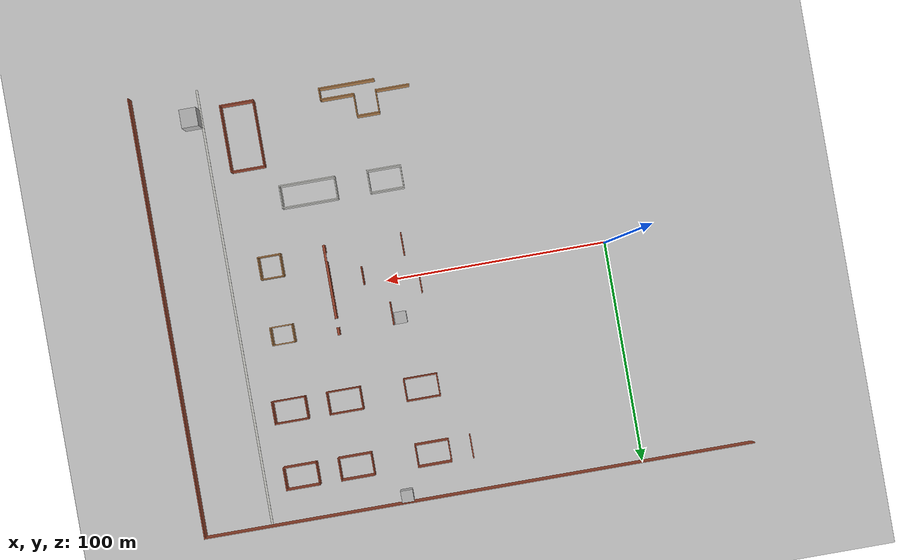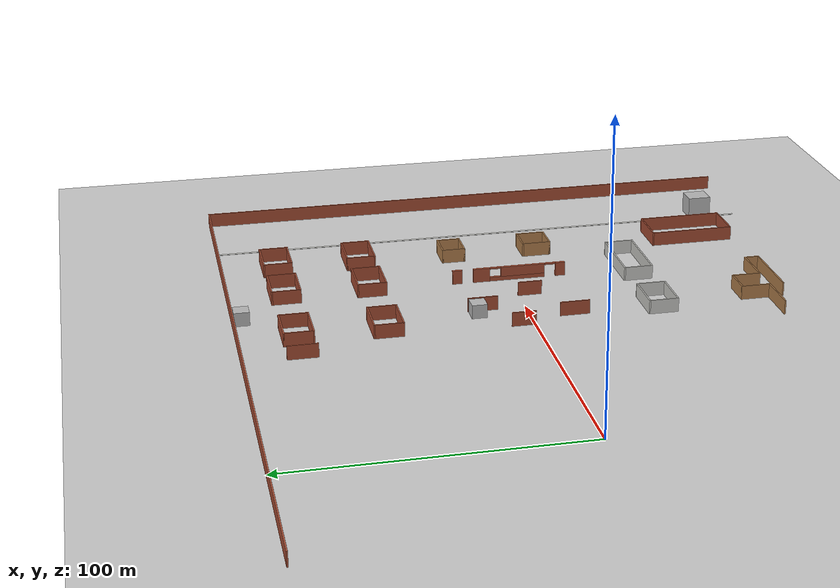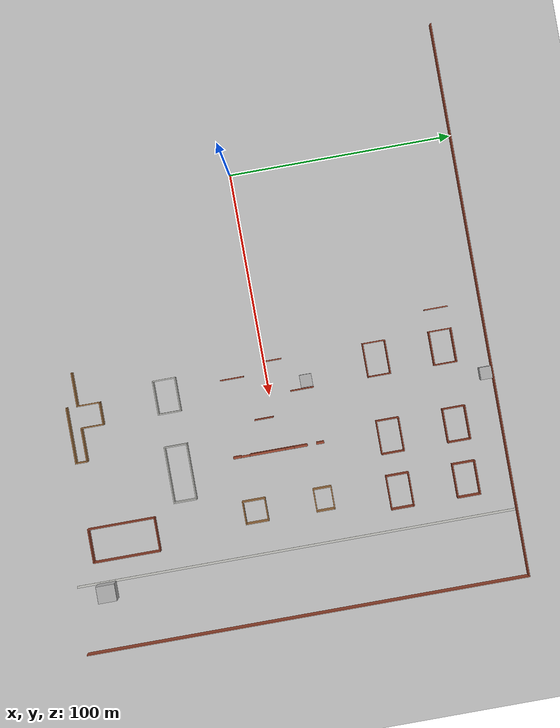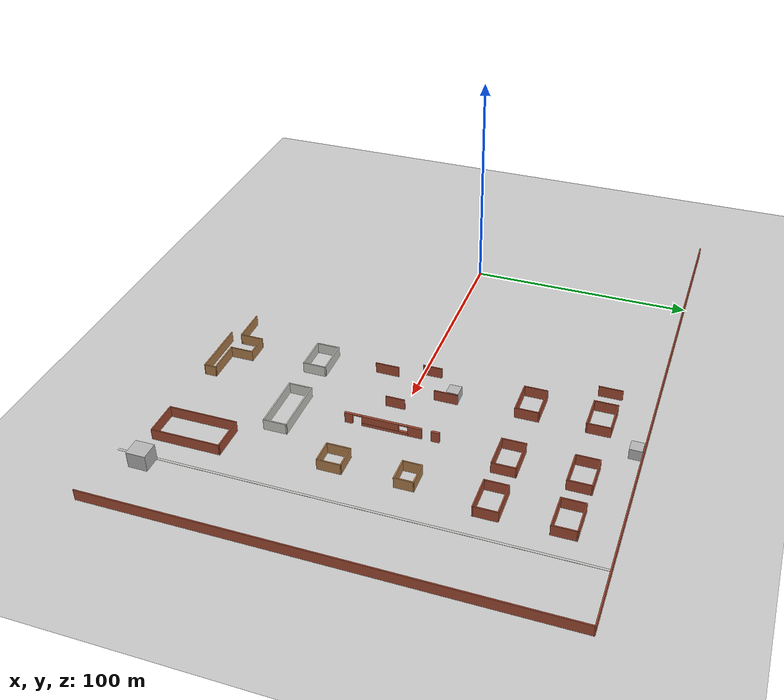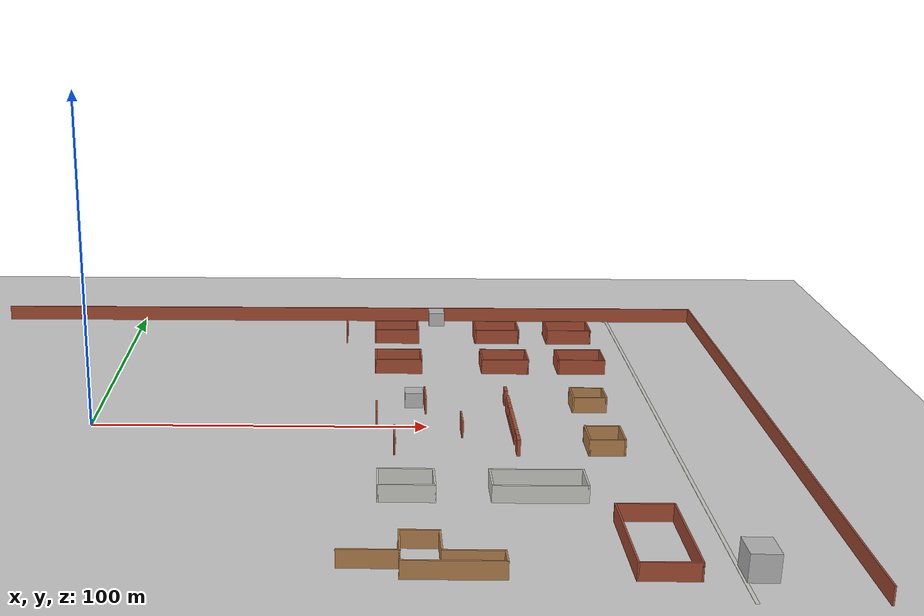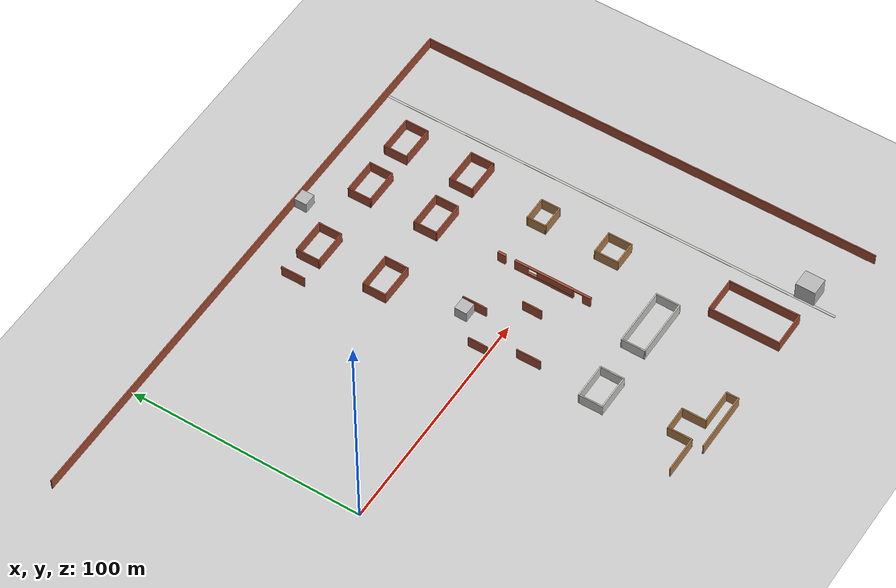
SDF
<sdf version="1.7">
 <world name="default">
  <model name="ground_plane">
   <static>1</static>
   <link name="link">
    <collision name="collision">
     <geometry><plane><normal>0 0 1</normal><size>100 100</size></plane></geometry>
     <surface><friction><ode><mu>100</mu><mu2>50</mu2></ode></friction></surface>
    </collision>
    <visual name="visual">
     <cast_shadows>0</cast_shadows>
     <geometry><plane><normal>0 0 1</normal><size>100 100</size></plane></geometry>
     <material>
      <script><uri>file://media/materials/scripts/gazebo.material</uri><name>Gazebo/Grey</name></script>
     </material>
    </visual>
   </link>
  </model>
  <model name="Playground">
   <pose>75 0 0 0 -0 0</pose>
   <link name="Wall_146">
    <collision name="Wall_146_Collision">
     <geometry><box><size>15.5 0.5 5</size></box></geometry>
     <pose>0 0 2.5 0 -0 0</pose>
    </collision>
    <visual name="Wall_146_Visual">
     <pose>0 0 2.5 0 -0 0</pose>
     <geometry><box><size>15.5 0.5 5</size></box></geometry>
     <material>
      <script><uri>file://media/materials/scripts/gazebo.material</uri><name>Gazebo/Wood</name></script>
      <ambient>1 1 1 1</ambient>
     </material>
     <meta><layer>0</layer></meta>
    </visual>
    <pose>7.5 -85 0 0 -0 0</pose>
   </link>
   <link name="Wall_147">
    <collision name="Wall_147_Collision">
     <geometry><box><size>10.5 0.5 5</size></box></geometry>
     <pose>0 0 2.5 0 -0 0</pose>
    </collision>
    <visual name="Wall_147_Visual">
     <pose>0 0 2.5 0 -0 0</pose>
     <geometry><box><size>10.5 0.5 5</size></box></geometry>
     <material>
      <script><uri>file://media/materials/scripts/gazebo.material</uri><name>Gazebo/Wood</name></script>
      <ambient>1 1 1 1</ambient>
     </material>
     <meta><layer>0</layer></meta>
    </visual>
    <pose>15 -80 0 0 -0 1.5708</pose>
   </link>
   <link name="Wall_148">
    <collision name="Wall_148_Collision">
     <geometry><box><size>10.5 0.5 5</size></box></geometry>
     <pose>0 0 2.5 0 -0 0</pose>
    </collision>
    <visual name="Wall_148_Visual">
     <pose>0 0 2.5 0 -0 0</pose>
     <geometry><box><size>10.5 0.5 5</size></box></geometry>
     <material>
      <script><uri>file://media/materials/scripts/gazebo.material</uri><name>Gazebo/Wood</name></script>
      <ambient>1 1 1 1</ambient>
     </material>
     <meta><layer>0</layer></meta>
    </visual>
    <pose>20 -75 0 0 -0 0</pose>
   </link>
   <link name="Wall_149">
    <collision name="Wall_149_Collision">
     <geometry><box><size>10.5 0.5 5</size></box></geometry>
     <pose>0 0 2.5 0 -0 0</pose>
    </collision>
    <visual name="Wall_149_Visual">
     <pose>0 0 2.5 0 -0 0</pose>
     <geometry><box><size>10.5 0.5 5</size></box></geometry>
     <material>
      <script><uri>file://media/materials/scripts/gazebo.material</uri><name>Gazebo/Wood</name></script>
      <ambient>1 1 1 1</ambient>
     </material>
     <meta><layer>0</layer></meta>
    </visual>
    <pose>25 -80 0 0 -0 -1.5708</pose>
   </link>
   <link name="Wall_150">
    <collision name="Wall_150_Collision">
     <geometry><box><size>15.5 0.5 5</size></box></geometry>
     <pose>0 0 2.5 0 -0 0</pose>
    </collision>
    <visual name="Wall_150_Visual">
     <pose>0 0 2.5 0 -0 0</pose>
     <geometry><box><size>15.5 0.5 5</size></box></geometry>
     <material>
      <script><uri>file://media/materials/scripts/gazebo.material</uri><name>Gazebo/Wood</name></script>
      <ambient>1 1 1 1</ambient>
     </material>
     <meta><layer>0</layer></meta>
    </visual>
    <pose>32.5 -85 0 0 -0 0</pose>
   </link>
   <link name="Wall_151">
    <collision name="Wall_151_Collision">
     <geometry><box><size>5.5 0.5 5</size></box></geometry>
     <pose>0 0 2.5 0 -0 0</pose>
    </collision>
    <visual name="Wall_151_Visual">
     <pose>0 0 2.5 0 -0 0</pose>
     <geometry><box><size>5.5 0.5 5</size></box></geometry>
     <material>
      <script><uri>file://media/materials/scripts/gazebo.material</uri><name>Gazebo/Wood</name></script>
      <ambient>1 1 1 1</ambient>
     </material>
     <meta><layer>0</layer></meta>
    </visual>
    <pose>40 -87.5 0 0 -0 -1.5708</pose>
   </link>
   <link name="Wall_152">
    <collision name="Wall_152_Collision">
     <geometry><box><size>25.5 0.5 5</size></box></geometry>
     <pose>0 0 2.5 0 -0 0</pose>
    </collision>
    <visual name="Wall_152_Visual">
     <pose>0 0 2.5 0 -0 0</pose>
     <geometry><box><size>25.5 0.5 5</size></box></geometry>
     <material>
      <script><uri>file://media/materials/scripts/gazebo.material</uri><name>Gazebo/Wood</name></script>
      <ambient>1 1 1 1</ambient>
     </material>
     <meta><layer>0</layer></meta>
    </visual>
    <pose>27.5 -90 0 0 -0 3.14159</pose>
   </link>
   <link name="Wall_164">
    <collision name="Wall_164_Collision">
     <geometry><box><size>10.5 0.5 5</size></box></geometry>
     <pose>0 0 2.5 0 -0 0</pose>
    </collision>
    <visual name="Wall_164_Visual">
     <pose>0 0 2.5 0 -0 0</pose>
     <geometry><box><size>10.5 0.5 5</size></box></geometry>
     <material>
      <script><uri>file://media/materials/scripts/gazebo.material</uri><name>Gazebo/CeilingTiled</name></script>
      <ambient>0.435294 0.796078 0.67451 1</ambient>
     </material>
     <meta><layer>0</layer></meta>
    </visual>
    <pose>10 -45 0 0 -0 -1.5708</pose>
   </link>
   <link name="Wall_165">
    <collision name="Wall_165_Collision">
     <geometry><box><size>15.5 0.5 5</size></box></geometry>
     <pose>0 0 2.5 0 -0 0</pose>
    </collision>
    <visual name="Wall_165_Visual">
     <pose>0 0 2.5 0 -0 0</pose>
     <geometry><box><size>15.5 0.5 5</size></box></geometry>
     <material>
      <script><uri>file://media/materials/scripts/gazebo.material</uri><name>Gazebo/CeilingTiled</name></script>
      <ambient>0.435294 0.796078 0.67451 1</ambient>
     </material>
     <meta><layer>0</layer></meta>
    </visual>
    <pose>17.5 -50 0 0 -0 0</pose>
   </link>
   <link name="Wall_166">
    <collision name="Wall_166_Collision">
     <geometry><box><size>10.5 0.5 5</size></box></geometry>
     <pose>0 0 2.5 0 -0 0</pose>
    </collision>
    <visual name="Wall_166_Visual">
     <pose>0 0 2.5 0 -0 0</pose>
     <geometry><box><size>10.5 0.5 5</size></box></geometry>
     <material>
      <script><uri>file://media/materials/scripts/gazebo.material</uri><name>Gazebo/CeilingTiled</name></script>
      <ambient>0.435294 0.796078 0.67451 1</ambient>
     </material>
     <meta><layer>0</layer></meta>
    </visual>
    <pose>25 -45 0 0 -0 1.5708</pose>
   </link>
   <link name="Wall_167">
    <collision name="Wall_167_Collision">
     <geometry><box><size>15.5 0.5 5</size></box></geometry>
     <pose>0 0 2.5 0 -0 0</pose>
    </collision>
    <visual name="Wall_167_Visual">
     <pose>0 0 2.5 0 -0 0</pose>
     <geometry><box><size>15.5 0.5 5</size></box></geometry>
     <material>
      <script><uri>file://media/materials/scripts/gazebo.material</uri><name>Gazebo/CeilingTiled</name></script>
      <ambient>0.435294 0.796078 0.67451 1</ambient>
     </material>
     <meta><layer>0</layer></meta>
    </visual>
    <pose>17.5 -40 0 0 -0 3.14159</pose>
   </link>
   <link name="Wall_169">
    <collision name="Wall_169_Collision">
     <geometry><box><size>10.5 0.5 5</size></box></geometry>
     <pose>0 0 2.5 0 -0 0</pose>
    </collision>
    <visual name="Wall_169_Visual">
     <pose>0 0 2.5 0 -0 0</pose>
     <geometry><box><size>10.5 0.5 5</size></box></geometry>
     <material>
      <script><uri>file://media/materials/scripts/gazebo.material</uri><name>Gazebo/CeilingTiled</name></script>
      <ambient>0.435294 0.796078 0.67451 1</ambient>
     </material>
     <meta><layer>0</layer></meta>
    </visual>
    <pose>40 -45 0 0 -0 -1.5708</pose>
   </link>
   <link name="Wall_170">
    <collision name="Wall_170_Collision">
     <geometry><box><size>25.5 0.5 5</size></box></geometry>
     <pose>0 0 2.5 0 -0 0</pose>
    </collision>
    <visual name="Wall_170_Visual">
     <pose>0 0 2.5 0 -0 0</pose>
     <geometry><box><size>25.5 0.5 5</size></box></geometry>
     <material>
      <script><uri>file://media/materials/scripts/gazebo.material</uri><name>Gazebo/CeilingTiled</name></script>
      <ambient>0.435294 0.796078 0.67451 1</ambient>
     </material>
     <meta><layer>0</layer></meta>
    </visual>
    <pose>52.5 -50 0 0 -0 0</pose>
   </link>
   <link name="Wall_171">
    <collision name="Wall_171_Collision">
     <geometry><box><size>10.5 0.5 5</size></box></geometry>
     <pose>0 0 2.5 0 -0 0</pose>
    </collision>
    <visual name="Wall_171_Visual">
     <pose>0 0 2.5 0 -0 0</pose>
     <geometry><box><size>10.5 0.5 5</size></box></geometry>
     <material>
      <script><uri>file://media/materials/scripts/gazebo.material</uri><name>Gazebo/CeilingTiled</name></script>
      <ambient>0.435294 0.796078 0.67451 1</ambient>
     </material>
     <meta><layer>0</layer></meta>
    </visual>
    <pose>65 -45 0 0 -0 1.5708</pose>
   </link>
   <link name="Wall_172">
    <collision name="Wall_172_Collision">
     <geometry><box><size>25.5 0.5 5</size></box></geometry>
     <pose>0 0 2.5 0 -0 0</pose>
    </collision>
    <visual name="Wall_172_Visual">
     <pose>0 0 2.5 0 -0 0</pose>
     <geometry><box><size>25.5 0.5 5</size></box></geometry>
     <material>
      <script><uri>file://media/materials/scripts/gazebo.material</uri><name>Gazebo/CeilingTiled</name></script>
      <ambient>0.435294 0.796078 0.67451 1</ambient>
     </material>
     <meta><layer>0</layer></meta>
    </visual>
    <pose>52.5 -40 0 0 -0 3.14159</pose>
   </link>
   <link name="Wall_174">
    <pose>50 0 0 0 -0 -1.5708</pose>
    <visual name="Wall_174_Visual_0">
     <pose>-18.75 0 2.5 0 -0 0</pose>
     <geometry><box><size>3.5 1 5</size></box></geometry>
     <material>
      <script><uri>file://media/materials/scripts/gazebo.material</uri><name>Gazebo/Bricks</name></script>
      <ambient>1 1 1 1</ambient>
     </material>
     <meta><layer>0</layer></meta>
    </visual>
    <collision name="Wall_174_Collision_0">
     <geometry><box><size>3.5 1 5</size></box></geometry>
     <pose>-18.75 0 2.5 0 -0 0</pose>
    </collision>
    <visual name="Wall_174_Visual_1">
     <pose>-10 0 2.5 0 -0 0</pose>
     <geometry><box><size>6 1 5</size></box></geometry>
     <material>
      <script><uri>file://media/materials/scripts/gazebo.material</uri><name>Gazebo/Bricks</name></script>
      <ambient>1 1 1 1</ambient>
     </material>
     <meta><layer>0</layer></meta>
    </visual>
    <collision name="Wall_174_Collision_1">
     <geometry><box><size>6 1 5</size></box></geometry>
     <pose>-10 0 2.5 0 -0 0</pose>
    </collision>
    <visual name="Wall_174_Visual_2">
     <pose>18.75 0 2.5 0 -0 0</pose>
     <geometry><box><size>3.5 1 5</size></box></geometry>
     <material>
      <script><uri>file://media/materials/scripts/gazebo.material</uri><name>Gazebo/Bricks</name></script>
      <ambient>1 1 1 1</ambient>
     </material>
     <meta><layer>0</layer></meta>
    </visual>
    <collision name="Wall_174_Collision_2">
     <geometry><box><size>3.5 1 5</size></box></geometry>
     <pose>18.75 0 2.5 0 -0 0</pose>
    </collision>
    <visual name="Wall_174_Visual_3">
     <pose>3 0 0.75 0 -0 0</pose>
     <geometry><box><size>20 1 1.5</size></box></geometry>
     <material>
      <script><uri>file://media/materials/scripts/gazebo.material</uri><name>Gazebo/Bricks</name></script>
      <ambient>1 1 1 1</ambient>
     </material>
     <meta><layer>0</layer></meta>
    </visual>
    <collision name="Wall_174_Collision_3">
     <geometry><box><size>20 1 1.5</size></box></geometry>
     <pose>3 0 0.75 0 -0 0</pose>
    </collision>
    <visual name="Wall_174_Visual_4">
     <pose>5 0 3.25 0 -0 0</pose>
     <geometry><box><size>16 1 3.5</size></box></geometry>
     <material>
      <script><uri>file://media/materials/scripts/gazebo.material</uri><name>Gazebo/Bricks</name></script>
      <ambient>1 1 1 1</ambient>
     </material>
     <meta><layer>0</layer></meta>
    </visual>
    <collision name="Wall_174_Collision_4">
     <geometry><box><size>16 1 3.5</size></box></geometry>
     <pose>5 0 3.25 0 -0 0</pose>
    </collision>
    <visual name="Wall_174_Visual_5">
     <pose>-5 0 4.75 0 -0 0</pose>
     <geometry><box><size>4 1 0.5</size></box></geometry>
     <material>
      <script><uri>file://media/materials/scripts/gazebo.material</uri><name>Gazebo/Bricks</name></script>
      <ambient>1 1 1 1</ambient>
     </material>
     <meta><layer>0</layer></meta>
    </visual>
    <collision name="Wall_174_Collision_5">
     <geometry><box><size>4 1 0.5</size></box></geometry>
     <pose>-5 0 4.75 0 -0 0</pose>
    </collision>
    <visual name="Wall_174_Visual_6">
     <pose>15 0 4.75 0 -0 0</pose>
     <geometry><box><size>4 1 0.5</size></box></geometry>
     <material>
      <script><uri>file://media/materials/scripts/gazebo.material</uri><name>Gazebo/Bricks</name></script>
      <ambient>1 1 1 1</ambient>
     </material>
     <meta><layer>0</layer></meta>
    </visual>
    <collision name="Wall_174_Collision_6">
     <geometry><box><size>4 1 0.5</size></box></geometry>
     <pose>15 0 4.75 0 -0 0</pose>
    </collision>
   </link>
   <link name="Wall_186">
    <collision name="Wall_186_Collision">
     <geometry><box><size>10.5 0.5 5</size></box></geometry>
     <pose>0 0 2.5 0 -0 0</pose>
    </collision>
    <visual name="Wall_186_Visual">
     <pose>0 0 2.5 0 -0 0</pose>
     <geometry><box><size>10.5 0.5 5</size></box></geometry>
     <material>
      <script><uri>file://media/materials/scripts/gazebo.material</uri><name>Gazebo/Bricks</name></script>
      <ambient>0.760784 0.662745 0.627451 1</ambient>
     </material>
     <meta><layer>0</layer></meta>
    </visual>
    <pose>10 50 0 0 -0 -1.5708</pose>
   </link>
   <link name="Wall_187">
    <collision name="Wall_187_Collision">
     <geometry><box><size>15.5 0.5 5</size></box></geometry>
     <pose>0 0 2.5 0 -0 0</pose>
    </collision>
    <visual name="Wall_187_Visual">
     <pose>0 0 2.5 0 -0 0</pose>
     <geometry><box><size>15.5 0.5 5</size></box></geometry>
     <material>
      <script><uri>file://media/materials/scripts/gazebo.material</uri><name>Gazebo/Bricks</name></script>
      <ambient>0.760784 0.662745 0.627451 1</ambient>
     </material>
     <meta><layer>0</layer></meta>
    </visual>
    <pose>17.5 45 0 0 -0 0</pose>
   </link>
   <link name="Wall_188">
    <collision name="Wall_188_Collision">
     <geometry><box><size>10.5 0.5 5</size></box></geometry>
     <pose>0 0 2.5 0 -0 0</pose>
    </collision>
    <visual name="Wall_188_Visual">
     <pose>0 0 2.5 0 -0 0</pose>
     <geometry><box><size>10.5 0.5 5</size></box></geometry>
     <material>
      <script><uri>file://media/materials/scripts/gazebo.material</uri><name>Gazebo/Bricks</name></script>
      <ambient>0.760784 0.662745 0.627451 1</ambient>
     </material>
     <meta><layer>0</layer></meta>
    </visual>
    <pose>25 50 0 0 -0 1.5708</pose>
   </link>
   <link name="Wall_189">
    <collision name="Wall_189_Collision">
     <geometry><box><size>15.5 0.5 5</size></box></geometry>
     <pose>0 0 2.5 0 -0 0</pose>
    </collision>
    <visual name="Wall_189_Visual">
     <pose>0 0 2.5 0 -0 0</pose>
     <geometry><box><size>15.5 0.5 5</size></box></geometry>
     <material>
      <script><uri>file://media/materials/scripts/gazebo.material</uri><name>Gazebo/Bricks</name></script>
      <ambient>0.760784 0.662745 0.627451 1</ambient>
     </material>
     <meta><layer>0</layer></meta>
    </visual>
    <pose>17.5 55 0 0 -0 3.14159</pose>
   </link>
   <link name="Wall_191">
    <collision name="Wall_191_Collision">
     <geometry><box><size>10.5 0.5 5</size></box></geometry>
     <pose>0 0 2.5 0 -0 0</pose>
    </collision>
    <visual name="Wall_191_Visual">
     <pose>0 0 2.5 0 -0 0</pose>
     <geometry><box><size>10.5 0.5 5</size></box></geometry>
     <material>
      <script><uri>file://media/materials/scripts/gazebo.material</uri><name>Gazebo/Bricks</name></script>
      <ambient>0.760784 0.662745 0.627451 1</ambient>
     </material>
     <meta><layer>0</layer></meta>
    </visual>
    <pose>45 50 0 0 -0 -1.5708</pose>
   </link>
   <link name="Wall_192">
    <collision name="Wall_192_Collision">
     <geometry><box><size>15.5 0.5 5</size></box></geometry>
     <pose>0 0 2.5 0 -0 0</pose>
    </collision>
    <visual name="Wall_192_Visual">
     <pose>0 0 2.5 0 -0 0</pose>
     <geometry><box><size>15.5 0.5 5</size></box></geometry>
     <material>
      <script><uri>file://media/materials/scripts/gazebo.material</uri><name>Gazebo/Bricks</name></script>
      <ambient>0.760784 0.662745 0.627451 1</ambient>
     </material>
     <meta><layer>0</layer></meta>
    </visual>
    <pose>52.5 45 0 0 -0 0</pose>
   </link>
   <link name="Wall_193">
    <collision name="Wall_193_Collision">
     <geometry><box><size>10.5 0.5 5</size></box></geometry>
     <pose>0 0 2.5 0 -0 0</pose>
    </collision>
    <visual name="Wall_193_Visual">
     <pose>0 0 2.5 0 -0 0</pose>
     <geometry><box><size>10.5 0.5 5</size></box></geometry>
     <material>
      <script><uri>file://media/materials/scripts/gazebo.material</uri><name>Gazebo/Bricks</name></script>
      <ambient>0.760784 0.662745 0.627451 1</ambient>
     </material>
     <meta><layer>0</layer></meta>
    </visual>
    <pose>60 50 0 0 -0 1.5708</pose>
   </link>
   <link name="Wall_194">
    <collision name="Wall_194_Collision">
     <geometry><box><size>15.5 0.5 5</size></box></geometry>
     <pose>0 0 2.5 0 -0 0</pose>
    </collision>
    <visual name="Wall_194_Visual">
     <pose>0 0 2.5 0 -0 0</pose>
     <geometry><box><size>15.5 0.5 5</size></box></geometry>
     <material>
      <script><uri>file://media/materials/scripts/gazebo.material</uri><name>Gazebo/Bricks</name></script>
      <ambient>0.760784 0.662745 0.627451 1</ambient>
     </material>
     <meta><layer>0</layer></meta>
    </visual>
    <pose>52.5 55 0 0 -0 3.14159</pose>
   </link>
   <link name="Wall_197">
    <collision name="Wall_197_Collision">
     <geometry><box><size>15.5 0.5 5</size></box></geometry>
     <pose>0 0 2.5 0 -0 0</pose>
    </collision>
    <visual name="Wall_197_Visual">
     <pose>0 0 2.5 0 -0 0</pose>
     <geometry><box><size>15.5 0.5 5</size></box></geometry>
     <material>
      <script><uri>file://media/materials/scripts/gazebo.material</uri><name>Gazebo/Bricks</name></script>
      <ambient>0.760784 0.662745 0.627451 1</ambient>
     </material>
     <meta><layer>0</layer></meta>
    </visual>
    <pose>77.5 55 0 0 -0 0</pose>
   </link>
   <link name="Wall_198">
    <collision name="Wall_198_Collision">
     <geometry><box><size>10.5 0.5 5</size></box></geometry>
     <pose>0 0 2.5 0 -0 0</pose>
    </collision>
    <visual name="Wall_198_Visual">
     <pose>0 0 2.5 0 -0 0</pose>
     <geometry><box><size>10.5 0.5 5</size></box></geometry>
     <material>
      <script><uri>file://media/materials/scripts/gazebo.material</uri><name>Gazebo/Bricks</name></script>
      <ambient>0.760784 0.662745 0.627451 1</ambient>
     </material>
     <meta><layer>0</layer></meta>
    </visual>
    <pose>85 50 0 0 -0 -1.5708</pose>
   </link>
   <link name="Wall_199">
    <collision name="Wall_199_Collision">
     <geometry><box><size>15.5 0.5 5</size></box></geometry>
     <pose>0 0 2.5 0 -0 0</pose>
    </collision>
    <visual name="Wall_199_Visual">
     <pose>0 0 2.5 0 -0 0</pose>
     <geometry><box><size>15.5 0.5 5</size></box></geometry>
     <material>
      <script><uri>file://media/materials/scripts/gazebo.material</uri><name>Gazebo/Bricks</name></script>
      <ambient>0.760784 0.662745 0.627451 1</ambient>
     </material>
     <meta><layer>0</layer></meta>
    </visual>
    <pose>77.5 45 0 0 -0 3.14159</pose>
   </link>
   <link name="Wall_2">
    <collision name="Wall_2_Collision">
     <geometry><box><size>200.5 0.5 5</size></box></geometry>
     <pose>0 0 2.5 0 -0 0</pose>
    </collision>
    <visual name="Wall_2_Visual">
     <pose>0 0 2.5 0 -0 0</pose>
     <geometry><box><size>200.5 0.5 5</size></box></geometry>
     <material>
      <script><uri>file://media/materials/scripts/gazebo.material</uri><name>Gazebo/Bricks</name></script>
      <ambient>1 1 1 1</ambient>
     </material>
     <meta><layer>0</layer></meta>
    </visual>
    <pose>125 0 0 0 -0 1.5708</pose>
   </link>
   <link name="Wall_200">
    <collision name="Wall_200_Collision">
     <geometry><box><size>10.5 0.5 5</size></box></geometry>
     <pose>0 0 2.5 0 -0 0</pose>
    </collision>
    <visual name="Wall_200_Visual">
     <pose>0 0 2.5 0 -0 0</pose>
     <geometry><box><size>10.5 0.5 5</size></box></geometry>
     <material>
      <script><uri>file://media/materials/scripts/gazebo.material</uri><name>Gazebo/Bricks</name></script>
      <ambient>0.760784 0.662745 0.627451 1</ambient>
     </material>
     <meta><layer>0</layer></meta>
    </visual>
    <pose>70 50 0 0 -0 1.5708</pose>
   </link>
   <link name="Wall_204">
    <collision name="Wall_204_Collision">
     <geometry><box><size>30.5 0.5 5</size></box></geometry>
     <pose>0 0 2.5 0 -0 0</pose>
    </collision>
    <visual name="Wall_204_Visual">
     <pose>0 0 2.5 0 -0 0</pose>
     <geometry><box><size>30.5 0.5 5</size></box></geometry>
     <material>
      <script><uri>file://media/materials/scripts/gazebo.material</uri><name>Gazebo/Bricks</name></script>
      <ambient>1 1 1 1</ambient>
     </material>
     <meta><layer>0</layer></meta>
    </visual>
    <pose>70 -75 0 0 -0 -1.5708</pose>
   </link>
   <link name="Wall_205">
    <collision name="Wall_205_Collision">
     <geometry><box><size>15.5 0.5 5</size></box></geometry>
     <pose>0 0 2.5 0 -0 0</pose>
    </collision>
    <visual name="Wall_205_Visual">
     <pose>0 0 2.5 0 -0 0</pose>
     <geometry><box><size>15.5 0.5 5</size></box></geometry>
     <material>
      <script><uri>file://media/materials/scripts/gazebo.material</uri><name>Gazebo/Bricks</name></script>
      <ambient>1 1 1 1</ambient>
     </material>
     <meta><layer>0</layer></meta>
    </visual>
    <pose>77.5 -90 0 0 -0 0</pose>
   </link>
   <link name="Wall_206">
    <collision name="Wall_206_Collision">
     <geometry><box><size>30.5 0.5 5</size></box></geometry>
     <pose>0 0 2.5 0 -0 0</pose>
    </collision>
    <visual name="Wall_206_Visual">
     <pose>0 0 2.5 0 -0 0</pose>
     <geometry><box><size>30.5 0.5 5</size></box></geometry>
     <material>
      <script><uri>file://media/materials/scripts/gazebo.material</uri><name>Gazebo/Bricks</name></script>
      <ambient>1 1 1 1</ambient>
     </material>
     <meta><layer>0</layer></meta>
    </visual>
    <pose>85 -75 0 0 -0 1.5708</pose>
   </link>
   <link name="Wall_207">
    <collision name="Wall_207_Collision">
     <geometry><box><size>15.5 0.5 5</size></box></geometry>
     <pose>0 0 2.5 0 -0 0</pose>
    </collision>
    <visual name="Wall_207_Visual">
     <pose>0 0 2.5 0 -0 0</pose>
     <geometry><box><size>15.5 0.5 5</size></box></geometry>
     <material>
      <script><uri>file://media/materials/scripts/gazebo.material</uri><name>Gazebo/Bricks</name></script>
      <ambient>1 1 1 1</ambient>
     </material>
     <meta><layer>0</layer></meta>
    </visual>
    <pose>77.5 -60 0 0 -0 3.14159</pose>
   </link>
   <link name="Wall_209">
    <collision name="Wall_209_Collision">
     <geometry><box><size>200 1 0.1</size></box></geometry>
     <pose>0 0 0.05 0 -0 0</pose>
    </collision>
    <visual name="Wall_209_Visual">
     <pose>0 0 0.05 0 -0 0</pose>
     <geometry><box><size>200 1 0.1</size></box></geometry>
     <material>
      <script><uri>file://media/materials/scripts/gazebo.material</uri><name>Gazebo/CeilingTiled</name></script>
      <ambient>0.435294 0.796078 0.67451 1</ambient>
     </material>
     <meta><layer>0</layer></meta>
    </visual>
    <pose>95 0 0 0 -0 -1.5708</pose>
   </link>
   <link name="Wall_21">
    <collision name="Wall_21_Collision">
     <geometry><box><size>8.5 0.5 5</size></box></geometry>
     <pose>0 0 2.5 0 -0 0</pose>
    </collision>
    <visual name="Wall_21_Visual">
     <pose>0 0 2.5 0 -0 0</pose>
     <geometry><box><size>8.5 0.5 5</size></box></geometry>
     <material>
      <script><uri>file://media/materials/scripts/gazebo.material</uri><name>Gazebo/Bricks</name></script>
      <ambient>1 1 1 1</ambient>
     </material>
     <meta><layer>0</layer></meta>
    </visual>
    <pose>10 4 0 0 -0 1.5708</pose>
   </link>
   <link name="Wall_25">
    <collision name="Wall_25_Collision">
     <geometry><box><size>8.5 0.5 5</size></box></geometry>
     <pose>0 0 2.5 0 -0 0</pose>
    </collision>
    <visual name="Wall_25_Visual">
     <pose>0 0 2.5 0 -0 0</pose>
     <geometry><box><size>8.5 0.5 5</size></box></geometry>
     <material>
      <script><uri>file://media/materials/scripts/gazebo.material</uri><name>Gazebo/Bricks</name></script>
      <ambient>1 1 1 1</ambient>
     </material>
     <meta><layer>0</layer></meta>
    </visual>
    <pose>35 -4 0 0 -0 -1.5708</pose>
   </link>
   <link name="Wall_27">
    <collision name="Wall_27_Collision">
     <geometry><box><size>10.5 0.5 5</size></box></geometry>
     <pose>0 0 2.5 0 -0 0</pose>
    </collision>
    <visual name="Wall_27_Visual">
     <pose>0 0 2.5 0 -0 0</pose>
     <geometry><box><size>10.5 0.5 5</size></box></geometry>
     <material>
      <script><uri>file://media/materials/scripts/gazebo.material</uri><name>Gazebo/Bricks</name></script>
      <ambient>1 1 1 1</ambient>
     </material>
     <meta><layer>0</layer></meta>
    </visual>
    <pose>25 15 0 0 -0 1.5708</pose>
   </link>
   <link name="Wall_29">
    <collision name="Wall_29_Collision">
     <geometry><box><size>10.5 0.5 5</size></box></geometry>
     <pose>0 0 2.5 0 -0 0</pose>
    </collision>
    <visual name="Wall_29_Visual">
     <pose>0 0 2.5 0 -0 0</pose>
     <geometry><box><size>10.5 0.5 5</size></box></geometry>
     <material>
      <script><uri>file://media/materials/scripts/gazebo.material</uri><name>Gazebo/Bricks</name></script>
      <ambient>1 1 1 1</ambient>
     </material>
     <meta><layer>0</layer></meta>
    </visual>
    <pose>15 -15 0 0 -0 1.5708</pose>
   </link>
   <link name="Wall_3">
    <collision name="Wall_3_Collision">
     <geometry><box><size>250.5 0.5 5</size></box></geometry>
     <pose>0 0 2.5 0 -0 0</pose>
    </collision>
    <visual name="Wall_3_Visual">
     <pose>0 0 2.5 0 -0 0</pose>
     <geometry><box><size>250.5 0.5 5</size></box></geometry>
     <material>
      <script><uri>file://media/materials/scripts/gazebo.material</uri><name>Gazebo/Bricks</name></script>
      <ambient>1 1 1 1</ambient>
     </material>
     <meta><layer>0</layer></meta>
    </visual>
    <pose>-2e-06 100 0 0 -0 3.14159</pose>
   </link>
   <link name="Wall_33">
    <collision name="Wall_33_Collision">
     <geometry><box><size>8.5 0.5 5</size></box></geometry>
     <pose>0 0 2.5 0 -0 0</pose>
    </collision>
    <visual name="Wall_33_Visual">
     <pose>0 0 2.5 0 -0 0</pose>
     <geometry><box><size>8.5 0.5 5</size></box></geometry>
     <material>
      <script><uri>file://media/materials/scripts/gazebo.material</uri><name>Gazebo/Wood</name></script>
      <ambient>1 1 1 1</ambient>
     </material>
     <meta><layer>0</layer></meta>
    </visual>
    <pose>70 16 0 0 -0 -1.5708</pose>
   </link>
   <link name="Wall_34">
    <collision name="Wall_34_Collision">
     <geometry><box><size>10.5 0.5 5</size></box></geometry>
     <pose>0 0 2.5 0 -0 0</pose>
    </collision>
    <visual name="Wall_34_Visual">
     <pose>0 0 2.5 0 -0 0</pose>
     <geometry><box><size>10.5 0.5 5</size></box></geometry>
     <material>
      <script><uri>file://media/materials/scripts/gazebo.material</uri><name>Gazebo/Wood</name></script>
      <ambient>1 1 1 1</ambient>
     </material>
     <meta><layer>0</layer></meta>
    </visual>
    <pose>75 12 0 0 -0 0</pose>
   </link>
   <link name="Wall_35">
    <collision name="Wall_35_Collision">
     <geometry><box><size>8.5 0.5 5</size></box></geometry>
     <pose>0 0 2.5 0 -0 0</pose>
    </collision>
    <visual name="Wall_35_Visual">
     <pose>0 0 2.5 0 -0 0</pose>
     <geometry><box><size>8.5 0.5 5</size></box></geometry>
     <material>
      <script><uri>file://media/materials/scripts/gazebo.material</uri><name>Gazebo/Wood</name></script>
      <ambient>1 1 1 1</ambient>
     </material>
     <meta><layer>0</layer></meta>
    </visual>
    <pose>80 16 0 0 -0 1.5708</pose>
   </link>
   <link name="Wall_36">
    <collision name="Wall_36_Collision">
     <geometry><box><size>10.5 0.5 5</size></box></geometry>
     <pose>0 0 2.5 0 -0 0</pose>
    </collision>
    <visual name="Wall_36_Visual">
     <pose>0 0 2.5 0 -0 0</pose>
     <geometry><box><size>10.5 0.5 5</size></box></geometry>
     <material>
      <script><uri>file://media/materials/scripts/gazebo.material</uri><name>Gazebo/Wood</name></script>
      <ambient>1 1 1 1</ambient>
     </material>
     <meta><layer>0</layer></meta>
    </visual>
    <pose>75 20 0 0 -0 3.14159</pose>
   </link>
   <link name="Wall_43">
    <collision name="Wall_43_Collision">
     <geometry><box><size>10.5 0.5 5</size></box></geometry>
     <pose>0 0 2.5 0 -0 0</pose>
    </collision>
    <visual name="Wall_43_Visual">
     <pose>0 0 2.5 0 -0 0</pose>
     <geometry><box><size>10.5 0.5 5</size></box></geometry>
     <material>
      <script><uri>file://media/materials/scripts/gazebo.material</uri><name>Gazebo/Wood</name></script>
      <ambient>1 1 1 1</ambient>
     </material>
     <meta><layer>0</layer></meta>
    </visual>
    <pose>70 -15 0 0 -0 -1.5708</pose>
   </link>
   <link name="Wall_44">
    <collision name="Wall_44_Collision">
     <geometry><box><size>10.5 0.5 5</size></box></geometry>
     <pose>0 0 2.5 0 -0 0</pose>
    </collision>
    <visual name="Wall_44_Visual">
     <pose>0 0 2.5 0 -0 0</pose>
     <geometry><box><size>10.5 0.5 5</size></box></geometry>
     <material>
      <script><uri>file://media/materials/scripts/gazebo.material</uri><name>Gazebo/Wood</name></script>
      <ambient>1 1 1 1</ambient>
     </material>
     <meta><layer>0</layer></meta>
    </visual>
    <pose>75 -20 0 0 -0 0</pose>
   </link>
   <link name="Wall_45">
    <collision name="Wall_45_Collision">
     <geometry><box><size>10.5 0.5 5</size></box></geometry>
     <pose>0 0 2.5 0 -0 0</pose>
    </collision>
    <visual name="Wall_45_Visual">
     <pose>0 0 2.5 0 -0 0</pose>
     <geometry><box><size>10.5 0.5 5</size></box></geometry>
     <material>
      <script><uri>file://media/materials/scripts/gazebo.material</uri><name>Gazebo/Wood</name></script>
      <ambient>1 1 1 1</ambient>
     </material>
     <meta><layer>0</layer></meta>
    </visual>
    <pose>80 -15 0 0 -0 1.5708</pose>
   </link>
   <link name="Wall_46">
    <collision name="Wall_46_Collision">
     <geometry><box><size>10.5 0.5 5</size></box></geometry>
     <pose>0 0 2.5 0 -0 0</pose>
    </collision>
    <visual name="Wall_46_Visual">
     <pose>0 0 2.5 0 -0 0</pose>
     <geometry><box><size>10.5 0.5 5</size></box></geometry>
     <material>
      <script><uri>file://media/materials/scripts/gazebo.material</uri><name>Gazebo/Wood</name></script>
      <ambient>1 1 1 1</ambient>
     </material>
     <meta><layer>0</layer></meta>
    </visual>
    <pose>75 -10 0 0 -0 3.14159</pose>
   </link>
   <link name="Wall_49">
    <collision name="Wall_49_Collision">
     <geometry><box><size>10.5 0.5 5</size></box></geometry>
     <pose>0 0 2.5 0 -0 0</pose>
    </collision>
    <visual name="Wall_49_Visual">
     <pose>0 0 2.5 0 -0 0</pose>
     <geometry><box><size>10.5 0.5 5</size></box></geometry>
     <material>
      <script><uri>file://media/materials/scripts/gazebo.material</uri><name>Gazebo/Bricks</name></script>
      <ambient>0.996078 0.47451 0.0196078 1</ambient>
     </material>
     <meta><layer>0</layer></meta>
    </visual>
    <pose>-2e-06 80 0 0 -0 -1.5708</pose>
   </link>
   <link name="Wall_53">
    <collision name="Wall_53_Collision">
     <geometry><box><size>15.5 0.5 5</size></box></geometry>
     <pose>0 0 2.5 0 -0 0</pose>
    </collision>
    <visual name="Wall_53_Visual">
     <pose>0 0 2.5 0 -0 0</pose>
     <geometry><box><size>15.5 0.5 5</size></box></geometry>
     <material>
      <script><uri>file://media/materials/scripts/gazebo.material</uri><name>Gazebo/Bricks</name></script>
      <ambient>0.996078 0.47451 0.0196078 1</ambient>
     </material>
     <meta><layer>0</layer></meta>
    </visual>
    <pose>17.5 85 0 0 -0 0</pose>
   </link>
   <link name="Wall_54">
    <collision name="Wall_54_Collision">
     <geometry><box><size>10.5 0.5 5</size></box></geometry>
     <pose>0 0 2.5 0 -0 0</pose>
    </collision>
    <visual name="Wall_54_Visual">
     <pose>0 0 2.5 0 -0 0</pose>
     <geometry><box><size>10.5 0.5 5</size></box></geometry>
     <material>
      <script><uri>file://media/materials/scripts/gazebo.material</uri><name>Gazebo/Bricks</name></script>
      <ambient>0.996078 0.47451 0.0196078 1</ambient>
     </material>
     <meta><layer>0</layer></meta>
    </visual>
    <pose>25 80 0 0 -0 -1.5708</pose>
   </link>
   <link name="Wall_55">
    <collision name="Wall_55_Collision">
     <geometry><box><size>15.5 0.5 5</size></box></geometry>
     <pose>0 0 2.5 0 -0 0</pose>
    </collision>
    <visual name="Wall_55_Visual">
     <pose>0 0 2.5 0 -0 0</pose>
     <geometry><box><size>15.5 0.5 5</size></box></geometry>
     <material>
      <script><uri>file://media/materials/scripts/gazebo.material</uri><name>Gazebo/Bricks</name></script>
      <ambient>0.996078 0.47451 0.0196078 1</ambient>
     </material>
     <meta><layer>0</layer></meta>
    </visual>
    <pose>17.5 75 0 0 -0 3.14159</pose>
   </link>
   <link name="Wall_56">
    <collision name="Wall_56_Collision">
     <geometry><box><size>10.5 0.5 5</size></box></geometry>
     <pose>0 0 2.5 0 -0 0</pose>
    </collision>
    <visual name="Wall_56_Visual">
     <pose>0 0 2.5 0 -0 0</pose>
     <geometry><box><size>10.5 0.5 5</size></box></geometry>
     <material>
      <script><uri>file://media/materials/scripts/gazebo.material</uri><name>Gazebo/Bricks</name></script>
      <ambient>0.996078 0.47451 0.0196078 1</ambient>
     </material>
     <meta><layer>0</layer></meta>
    </visual>
    <pose>10 80 0 0 -0 1.5708</pose>
   </link>
   <link name="Wall_68">
    <collision name="Wall_68_Collision">
     <geometry><box><size>10.5 0.5 5</size></box></geometry>
     <pose>0 0 2.5 0 -0 0</pose>
    </collision>
    <visual name="Wall_68_Visual">
     <pose>0 0 2.5 0 -0 0</pose>
     <geometry><box><size>10.5 0.5 5</size></box></geometry>
     <material>
      <script><uri>file://media/materials/scripts/gazebo.material</uri><name>Gazebo/Bricks</name></script>
      <ambient>0.996078 0.47451 0.0196078 1</ambient>
     </material>
     <meta><layer>0</layer></meta>
    </visual>
    <pose>45 80 0 0 -0 -1.5708</pose>
   </link>
   <link name="Wall_69">
    <collision name="Wall_69_Collision">
     <geometry><box><size>15.5 0.5 5</size></box></geometry>
     <pose>0 0 2.5 0 -0 0</pose>
    </collision>
    <visual name="Wall_69_Visual">
     <pose>0 0 2.5 0 -0 0</pose>
     <geometry><box><size>15.5 0.5 5</size></box></geometry>
     <material>
      <script><uri>file://media/materials/scripts/gazebo.material</uri><name>Gazebo/Bricks</name></script>
      <ambient>0.996078 0.47451 0.0196078 1</ambient>
     </material>
     <meta><layer>0</layer></meta>
    </visual>
    <pose>52.5 75 0 0 -0 0</pose>
   </link>
   <link name="Wall_70">
    <collision name="Wall_70_Collision">
     <geometry><box><size>10.5 0.5 5</size></box></geometry>
     <pose>0 0 2.5 0 -0 0</pose>
    </collision>
    <visual name="Wall_70_Visual">
     <pose>0 0 2.5 0 -0 0</pose>
     <geometry><box><size>10.5 0.5 5</size></box></geometry>
     <material>
      <script><uri>file://media/materials/scripts/gazebo.material</uri><name>Gazebo/Bricks</name></script>
      <ambient>0.996078 0.47451 0.0196078 1</ambient>
     </material>
     <meta><layer>0</layer></meta>
    </visual>
    <pose>60 80 0 0 -0 1.5708</pose>
   </link>
   <link name="Wall_71">
    <collision name="Wall_71_Collision">
     <geometry><box><size>15.5 0.5 5</size></box></geometry>
     <pose>0 0 2.5 0 -0 0</pose>
    </collision>
    <visual name="Wall_71_Visual">
     <pose>0 0 2.5 0 -0 0</pose>
     <geometry><box><size>15.5 0.5 5</size></box></geometry>
     <material>
      <script><uri>file://media/materials/scripts/gazebo.material</uri><name>Gazebo/Bricks</name></script>
      <ambient>0.996078 0.47451 0.0196078 1</ambient>
     </material>
     <meta><layer>0</layer></meta>
    </visual>
    <pose>52.5 85 0 0 -0 3.14159</pose>
   </link>
   <link name="Wall_73">
    <collision name="Wall_73_Collision">
     <geometry><box><size>10.5 0.5 5</size></box></geometry>
     <pose>0 0 2.5 0 -0 0</pose>
    </collision>
    <visual name="Wall_73_Visual">
     <pose>0 0 2.5 0 -0 0</pose>
     <geometry><box><size>10.5 0.5 5</size></box></geometry>
     <material>
      <script><uri>file://media/materials/scripts/gazebo.material</uri><name>Gazebo/Bricks</name></script>
      <ambient>0.996078 0.47451 0.0196078 1</ambient>
     </material>
     <meta><layer>0</layer></meta>
    </visual>
    <pose>70 80 0 0 -0 -1.5708</pose>
   </link>
   <link name="Wall_74">
    <collision name="Wall_74_Collision">
     <geometry><box><size>15.5 0.5 5</size></box></geometry>
     <pose>0 0 2.5 0 -0 0</pose>
    </collision>
    <visual name="Wall_74_Visual">
     <pose>0 0 2.5 0 -0 0</pose>
     <geometry><box><size>15.5 0.5 5</size></box></geometry>
     <material>
      <script><uri>file://media/materials/scripts/gazebo.material</uri><name>Gazebo/Bricks</name></script>
      <ambient>0.996078 0.47451 0.0196078 1</ambient>
     </material>
     <meta><layer>0</layer></meta>
    </visual>
    <pose>77.5 75 0 0 -0 0</pose>
   </link>
   <link name="Wall_75">
    <collision name="Wall_75_Collision">
     <geometry><box><size>10.5 0.5 5</size></box></geometry>
     <pose>0 0 2.5 0 -0 0</pose>
    </collision>
    <visual name="Wall_75_Visual">
     <pose>0 0 2.5 0 -0 0</pose>
     <geometry><box><size>10.5 0.5 5</size></box></geometry>
     <material>
      <script><uri>file://media/materials/scripts/gazebo.material</uri><name>Gazebo/Bricks</name></script>
      <ambient>0.996078 0.47451 0.0196078 1</ambient>
     </material>
     <meta><layer>0</layer></meta>
    </visual>
    <pose>85 80 0 0 -0 1.5708</pose>
   </link>
   <link name="Wall_76">
    <collision name="Wall_76_Collision">
     <geometry><box><size>15.501 0.5 5</size></box></geometry>
     <pose>0 0 2.5 0 -0 0</pose>
    </collision>
    <visual name="Wall_76_Visual">
     <pose>0 0 2.5 0 -0 0</pose>
     <geometry><box><size>15.501 0.5 5</size></box></geometry>
     <material>
      <script><uri>file://media/materials/scripts/gazebo.material</uri><name>Gazebo/Bricks</name></script>
      <ambient>0.996078 0.47451 0.0196078 1</ambient>
     </material>
     <meta><layer>0</layer></meta>
    </visual>
    <pose>77.5 85 0 0 -0 3.14159</pose>
   </link>
   <static>1</static>
  </model>
  <model name="Fire">
   <link name="link_0">
    <inertial>
     <mass>51.3237</mass>
     <inertia><ixx>147.461</ixx><ixy>0</ixy><ixz>0</ixz><iyy>147.461</iyy><iyz>0</iyz><izz>89.614</izz></inertia>
    </inertial>
    <pose>3e-06 5e-06 0 0 -0 0</pose>
    <visual name="visual">
     <geometry><box><size>7.63977 8.42988 7.4851</size></box></geometry>
     <material>
      <lighting>1</lighting>
      <script><uri>file://media/materials/scripts/gazebo.material</uri><name>Gazebo/Fire</name></script>
      <shader type="pixel"/>
     </material>
    </visual>
    <collision name="collision">
     <geometry><box><size>7.63977 8.42988 7.4851</size></box></geometry>
     <surface>
      <friction>
       <ode><mu>1</mu><mu2>1</mu2><fdir1>0 0 0</fdir1><slip1>0</slip1><slip2>0</slip2></ode>
       <torsional>
        <coefficient>1</coefficient>
        <patch_radius>0</patch_radius>
        <surface_radius>0</surface_radius>
        <use_patch_radius>1</use_patch_radius>
        <ode><slip>0</slip></ode>
       </torsional>
      </friction>
      <bounce><restitution_coefficient>0</restitution_coefficient><threshold>1e+06</threshold></bounce>
      <contact>
       <collide_without_contact>0</collide_without_contact>
       <collide_without_contact_bitmask>1</collide_without_contact_bitmask>
       <collide_bitmask>1</collide_bitmask>
       <ode>
        <soft_cfm>0</soft_cfm>
        <soft_erp>0.2</soft_erp>
        <kp>1e+13</kp>
        <kd>1</kd>
        <max_vel>0.01</max_vel>
        <min_depth>0</min_depth>
       </ode>
       <bullet>
        <split_impulse>1</split_impulse>
        <split_impulse_penetration_threshold>-0.01</split_impulse_penetration_threshold>
        <soft_cfm>0</soft_cfm>
        <soft_erp>0.2</soft_erp>
        <kp>1e+13</kp>
        <kd>1</kd>
       </bullet>
      </contact>
     </surface>
    </collision>
   </link>
   <static>0</static>
   <pose>174.016 -86.4907 3.79467 -1.2e-05 0.013723 -0.001223</pose>
  </model>
  <model name="Fire_0">
   <link name="link_0">
    <inertial>
     <mass>51.3237</mass>
     <inertia><ixx>147.461</ixx><ixy>0</ixy><ixz>0</ixz><iyy>147.461</iyy><iyz>0</iyz><izz>89.614</izz></inertia>
    </inertial>
    <pose>3e-06 5e-06 0 0 -0 0</pose>
    <visual name="visual">
     <geometry><box><size>5.50483 5.39021 4.89914</size></box></geometry>
     <material>
      <lighting>1</lighting>
      <script><uri>file://media/materials/scripts/gazebo.material</uri><name>Gazebo/Fire</name></script>
      <shader type="pixel"/>
     </material>
    </visual>
    <collision name="collision">
     <geometry><box><size>5.50483 5.39021 4.89914</size></box></geometry>
     <surface>
      <friction>
       <ode><mu>1</mu><mu2>1</mu2><fdir1>0 0 0</fdir1><slip1>0</slip1><slip2>0</slip2></ode>
       <torsional>
        <coefficient>1</coefficient>
        <patch_radius>0</patch_radius>
        <surface_radius>0</surface_radius>
        <use_patch_radius>1</use_patch_radius>
        <ode><slip>0</slip></ode>
       </torsional>
      </friction>
      <bounce><restitution_coefficient>0</restitution_coefficient><threshold>1e+06</threshold></bounce>
      <contact>
       <collide_without_contact>0</collide_without_contact>
       <collide_without_contact_bitmask>1</collide_without_contact_bitmask>
       <collide_bitmask>1</collide_bitmask>
       <ode>
        <soft_cfm>0</soft_cfm>
        <soft_erp>0.2</soft_erp>
        <kp>1e+13</kp>
        <kd>1</kd>
        <max_vel>0.01</max_vel>
        <min_depth>0</min_depth>
       </ode>
       <bullet>
        <split_impulse>1</split_impulse>
        <split_impulse_penetration_threshold>-0.01</split_impulse_penetration_threshold>
        <soft_cfm>0</soft_cfm>
        <soft_erp>0.2</soft_erp>
        <kp>1e+13</kp>
        <kd>1</kd>
       </bullet>
      </contact>
     </surface>
    </collision>
   </link>
   <static>0</static>
   <pose>96.5383 17.3967 2.44957 0 -0 0</pose>
  </model>
  <model name="Fire_0_clone">
   <link name="link_0">
    <inertial>
     <mass>51.3237</mass>
     <inertia><ixx>147.461</ixx><ixy>0</ixy><ixz>0</ixz><iyy>147.461</iyy><iyz>0</iyz><izz>89.614</izz></inertia>
    </inertial>
    <pose>3e-06 5e-06 0 0 -0 0</pose>
    <visual name="visual">
     <geometry><box><size>5.50484 5.39021 4.89914</size></box></geometry>
     <material>
      <lighting>1</lighting>
      <script><uri>file://media/materials/scripts/gazebo.material</uri><name>Gazebo/Fire</name></script>
      <shader type="pixel"/>
     </material>
    </visual>
    <collision name="collision">
     <geometry><box><size>5.50484 5.39021 4.89914</size></box></geometry>
     <surface>
      <friction>
       <ode><mu>1</mu><mu2>1</mu2><fdir1>0 0 0</fdir1><slip1>0</slip1><slip2>0</slip2></ode>
       <torsional>
        <coefficient>1</coefficient>
        <patch_radius>0</patch_radius>
        <surface_radius>0</surface_radius>
        <use_patch_radius>1</use_patch_radius>
        <ode><slip>0</slip></ode>
       </torsional>
      </friction>
      <bounce><restitution_coefficient>0</restitution_coefficient><threshold>1e+06</threshold></bounce>
      <contact>
       <collide_without_contact>0</collide_without_contact>
       <collide_without_contact_bitmask>1</collide_without_contact_bitmask>
       <collide_bitmask>1</collide_bitmask>
       <ode>
        <soft_cfm>0</soft_cfm>
        <soft_erp>0.2</soft_erp>
        <kp>1e+13</kp>
        <kd>1</kd>
        <max_vel>0.01</max_vel>
        <min_depth>0</min_depth>
       </ode>
       <bullet>
        <split_impulse>1</split_impulse>
        <split_impulse_penetration_threshold>-0.01</split_impulse_penetration_threshold>
        <soft_cfm>0</soft_cfm>
        <soft_erp>0.2</soft_erp>
        <kp>1e+13</kp>
        <kd>1</kd>
       </bullet>
      </contact>
     </surface>
    </collision>
   </link>
   <static>0</static>
   <pose>107.315 96.8546 2.44957 0 -0 0</pose>
  </model>
 </world>
</sdf>
